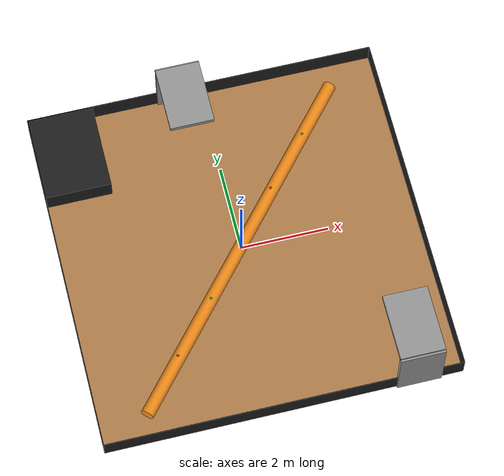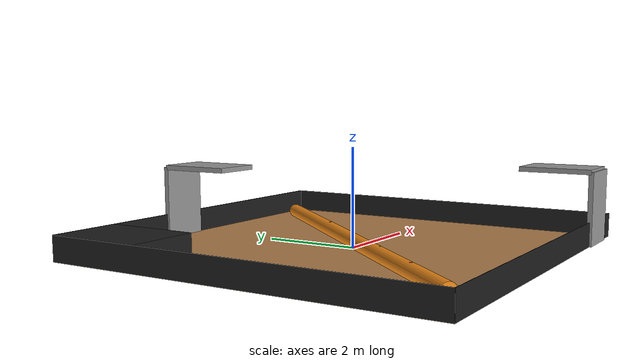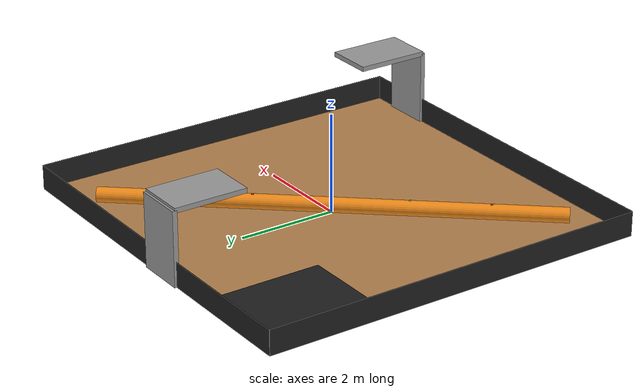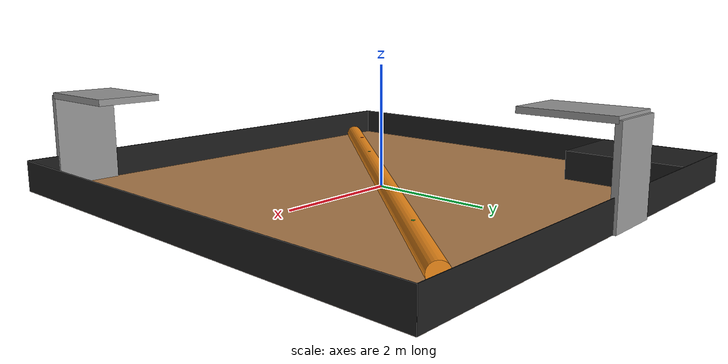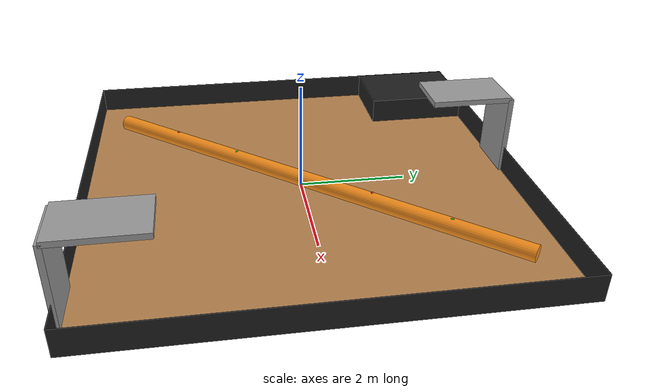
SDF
<?xml version="1.0" ?>
<sdf version="1.5">
  <model name="table">
    <static>true</static>
    <link name="link">
      <collision name="surface">
        <pose>0 0 0.0 0 0 0</pose>
        <geometry>
          <box>
            <size>8.0 8.0 0.01</size>
          </box>
        </geometry>
        <surface>
          <friction>
            <ode>
              <mu>0.6</mu>
              <mu2>0.6</mu2>
            </ode>
          </friction>
        </surface>
      </collision>
      <visual name="visual1">
        <pose>0 0 0.0 0 0 0</pose>
        <geometry>
          <box>
            <size>8.0 8.0 0.01</size>
          </box>
        </geometry>
        <material>
          <script>
            <uri>file://media/materials/scripts/gazebo.material</uri>
            <name>Gazebo/WoodPallet</name>
          </script>
        </material>
      </visual>

      <collision name="surface2">
        <pose>0 4.0 0.25 0 0 0</pose>
        <geometry>
          <box>
            <size>8.0 0.01 0.5</size>
          </box>
        </geometry>
        <surface>
          <friction>
            <ode>
              <mu>0.6</mu>
              <mu2>0.6</mu2>
            </ode>
          </friction>
        </surface>
      </collision>
      <visual name="visual2">
        <pose>0 4.0 0.25 0 0 0</pose>
        <geometry>
          <box>
            <size>8.0 0.01 0.5</size>
          </box>
        </geometry>
        <material>
          <script>
            <uri>file://media/materials/scripts/gazebo.material</uri>
            <name>Gazebo/Black</name>
          </script>
        </material>
      </visual>

      <collision name="surface3">
        <pose>0 -4.0 0.25 0 0 0</pose>
        <geometry>
          <box>
            <size>8.0 0.01 0.5</size>
          </box>
        </geometry>
        <surface>
          <friction>
            <ode>
              <mu>0.6</mu>
              <mu2>0.6</mu2>
            </ode>
          </friction>
        </surface>
      </collision>
      <visual name="visual3">
        <pose>0 -4.0 0.25 0 0 0</pose>
        <geometry>
          <box>
            <size>8.0 0.01 0.5</size>
          </box>
        </geometry>
        <material>
          <script>
            <uri>file://media/materials/scripts/gazebo.material</uri>
            <name>Gazebo/Black</name>
          </script>
        </material>
      </visual>

      <collision name="surface4">
        <pose>4.0 0.0 0.25 0 0 0</pose>
        <geometry>
          <box>
            <size>0.01 8.0 0.5</size>
          </box>
        </geometry>
        <surface>
          <friction>
            <ode>
              <mu>0.6</mu>
              <mu2>0.6</mu2>
            </ode>
          </friction>
        </surface>
      </collision>
      <visual name="visual4">
        <pose>4.0 0.0 0.25 0 0 0</pose>
        <geometry>
          <box>
            <size>0.01 8.0 0.5</size>
          </box>
        </geometry>
        <material>
          <script>
            <uri>file://media/materials/scripts/gazebo.material</uri>
            <name>Gazebo/Black</name>
          </script>
        </material>
      </visual>

      <collision name="surface5">
        <pose>-4.0 0.0 0.25 0 0 0</pose>
        <geometry>
          <box>
            <size>0.01 8.0 0.5</size>
          </box>
        </geometry>
        <surface>
          <friction>
            <ode>
              <mu>0.6</mu>
              <mu2>0.6</mu2>
            </ode>
          </friction>
        </surface>
      </collision>
      <visual name="visual5">
        <pose>-4.0 0.0 0.25 0 0 0</pose>
        <geometry>
          <box>
            <size>0.01 8.0 0.5</size>
          </box>
        </geometry>
        <material>
          <script>
            <uri>file://media/materials/scripts/gazebo.material</uri>
            <name>Gazebo/Black</name>
          </script>
        </material>
      </visual>

      <collision name="surface6">
        <pose>-3.25 3.0 0.25 0 0 0</pose>
        <geometry>
          <box>
            <size>1.5 2.0 0.5</size>
          </box>
        </geometry>
        <surface>
          <friction>
            <ode>
              <mu>0.6</mu>
              <mu2>0.6</mu2>
            </ode>
          </friction>
        </surface>
      </collision>
      <visual name="visual6">
        <pose>-3.25 3.0 0.25 0 0 0</pose>
        <geometry>
          <box>
            <size>1.5 2.0 0.5</size>
          </box>
        </geometry>
        <material>
          <script>
            <uri>file://media/materials/scripts/gazebo.material</uri>
            <name>Gazebo/Black</name>
          </script>
        </material>
      </visual>

      <collision name="surface7">
        <pose>3.0 -4.0 0.75 0 0 0</pose>
        <geometry>
          <box>
            <size>1.0 0.1 1.5</size>
          </box>
        </geometry>
        <surface>
          <friction>
            <ode>
              <mu>0.6</mu>
              <mu2>0.6</mu2>
            </ode>
          </friction>
        </surface>
      </collision>
      <visual name="visual7">
        <pose>3.0 -4.0 0.75 0 0 0</pose>
        <geometry>
          <box>
            <size>1.0 0.1 1.5</size>
          </box>
        </geometry>
        <material>
          <script>
            <uri>file://media/materials/scripts/gazebo.material</uri>
            <name>Gazebo/Gray</name>
          </script>
        </material>
      </visual>

      <collision name="surface8">
        <pose>3.0 -3.25 1.5 0 0 0</pose>
        <geometry>
          <box>
            <size>1.0 1.5 0.1</size>
          </box>
        </geometry>
        <surface>
          <friction>
            <ode>
              <mu>0.6</mu>
              <mu2>0.6</mu2>
            </ode>
          </friction>
        </surface>
      </collision>
      <visual name="visual8">
        <pose>3.0 -3.25 1.5 0 0 0</pose>
        <geometry>
          <box>
            <size>1.0 1.5 0.1</size>
          </box>
        </geometry>
        <material>
          <script>
            <uri>file://media/materials/scripts/gazebo.material</uri>
            <name>Gazebo/Gray</name>
          </script>
        </material>
      </visual>

      <collision name="surface9">
        <pose>-0.5 4.0 0.75 0 0 0</pose>
        <geometry>
          <box>
            <size>1.0 0.1 1.5</size>
          </box>
        </geometry>
        <surface>
          <friction>
            <ode>
              <mu>0.6</mu>
              <mu2>0.6</mu2>
            </ode>
          </friction>
        </surface>
      </collision>
      <visual name="visual9">
        <pose>-0.5 4.0 0.75 0 0 0</pose>
        <geometry>
          <box>
            <size>1.0 0.1 1.5</size>
          </box>
        </geometry>
        <material>
          <script>
            <uri>file://media/materials/scripts/gazebo.material</uri>
            <name>Gazebo/Gray</name>
          </script>
        </material>
      </visual>

      <collision name="surface10">
        <pose>-0.5 3.25 1.5 0 0 0</pose>
        <geometry>
          <box>
            <size>1.0 1.5 0.1</size>
          </box>
        </geometry>
        <surface>
          <friction>
            <ode>
              <mu>0.6</mu>
              <mu2>0.6</mu2>
            </ode>
          </friction>
        </surface>
      </collision>
      <visual name="visual10">
        <pose>-0.5 3.25 1.5 0 0 0</pose>
        <geometry>
          <box>
            <size>1.0 1.5 0.1</size>
          </box>
        </geometry>
        <material>
          <script>
            <uri>file://media/materials/scripts/gazebo.material</uri>
            <name>Gazebo/Gray</name>
          </script>
        </material>
      </visual>

      <collision name="surface11">
        <pose>0.0 0.0 0.2 1.57 0 -0.7071</pose>
        <geometry>
          <cylinder>
              <radius>0.2</radius>
              <length>9.0</length>
          </cylinder>
        </geometry>
        <surface>
          <friction>
            <ode>
              <mu>0.6</mu>
              <mu2>0.6</mu2>
            </ode>
          </friction>
        </surface>
      </collision>
      <visual name="visual11">
        <pose>0.0 0.0 0.15 1.57 0 -0.7071</pose>
        <geometry>
          <cylinder>
              <radius>0.15</radius>
              <length>9.0</length>
          </cylinder>
        </geometry>
        <material>
          <script>
            <uri>file://media/materials/scripts/gazebo.material</uri>
            <name>Gazebo/Orange</name>
          </script>
        </material>
      </visual>

      <visual name="sensor1">
        <pose>-1.98 -2.3 0.3025 0 0 0</pose>
        <geometry>
          <box>
            <size>0.05 0.05 0.00001</size>
          </box>
        </geometry>
        <material>
          <script>
            <uri>file://media/materials/scripts/gazebo.material</uri>
            <name>Gazebo/Red</name>
          </script>
        </material>
      </visual>

      <visual name="sensor2">
        <pose>-0.96 -1.15 0.3025 0 0 0</pose>
        <geometry>
          <box>
            <size>0.05 0.05 0.00001</size>
          </box>
        </geometry>
        <material>
          <script>
            <uri>file://media/materials/scripts/gazebo.material</uri>
            <name>Gazebo/Green</name>
          </script>
        </material>
      </visual>

      <visual name="sensor3">
        <pose>0.0 0.0 0.3025 0 0 0</pose>
        <geometry>
          <box>
            <size>0.05 0.05 0.00001</size>
          </box>
        </geometry>
        <material>
          <script>
            <uri>file://media/materials/scripts/gazebo.material</uri>
            <name>Gazebo/Red</name>
          </script>
        </material>
      </visual>

      <visual name="sensor4">
        <pose>0.96 1.15 0.3025 0 0 0</pose>
        <geometry>
          <box>
            <size>0.05 0.05 0.00001</size>
          </box>
        </geometry>
        <material>
          <script>
            <uri>file://media/materials/scripts/gazebo.material</uri>
            <name>Gazebo/Red</name>
          </script>
        </material>
      </visual>

      <visual name="sensor5">
        <pose>1.98 2.3 0.3025 0 0 0</pose>
        <geometry>
          <box>
            <size>0.05 0.05 0.00001</size>
          </box>
        </geometry>
        <material>
          <script>
            <uri>file://media/materials/scripts/gazebo.material</uri>
            <name>Gazebo/Green</name>
          </script>
        </material>
      </visual>

    </link>
  </model>
</sdf>
